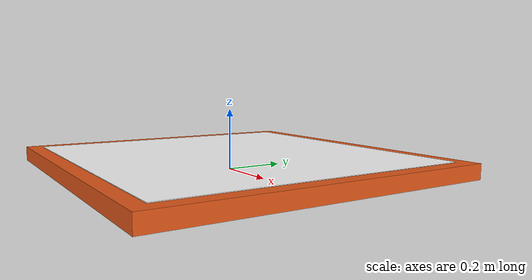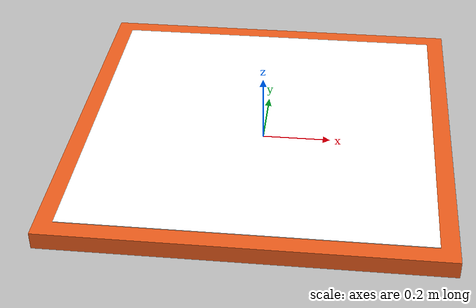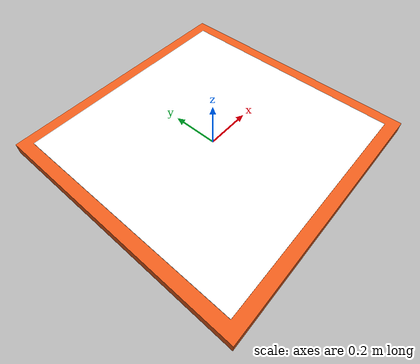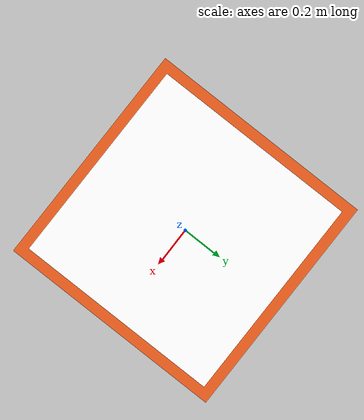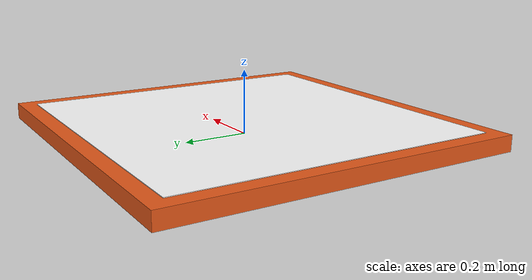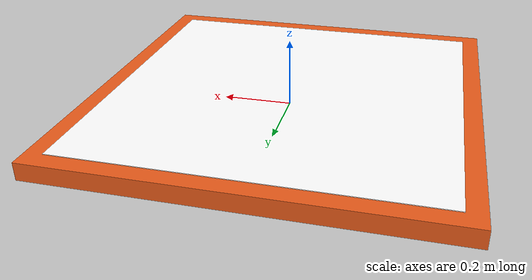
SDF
<?xml version="1.0"?>
<sdf version="1.9">
  <model name="aruco_marker">
    <static>true</static>
    <link name="link">
      <!-- marker face: 1x1 m plate; the printed marker occupies the central
           80% (0.8 m canvas -> marker itself 0.65 m, see gen_marker.py) -->
      <visual name="marker_face">
        <pose>0 0 0.051 0 0 0</pose>
        <geometry>
          <box><size>1.0 1.0 0.002</size></box>
        </geometry>
        <material>
          <diffuse>1 1 1 1</diffuse>
          <specular>0.1 0.1 0.1 1</specular>
          <pbr>
            <metal>
              <albedo_map>model://aruco_marker/materials/textures/marker.png</albedo_map>
              <roughness>1.0</roughness>
              <metalness>0.0</metalness>
            </metal>
          </pbr>
        </material>
      </visual>
      <!-- base slab so the plate sits visibly above the ground -->
      <visual name="base">
        <pose>0 0 0.025 0 0 0</pose>
        <geometry>
          <box><size>1.1 1.1 0.05</size></box>
        </geometry>
        <material>
          <diffuse>0.9 0.35 0.1 1</diffuse>
        </material>
      </visual>
      <collision name="collision">
        <pose>0 0 0.025 0 0 0</pose>
        <geometry>
          <box><size>1.1 1.1 0.05</size></box>
        </geometry>
      </collision>
    </link>
  </model>
</sdf>
